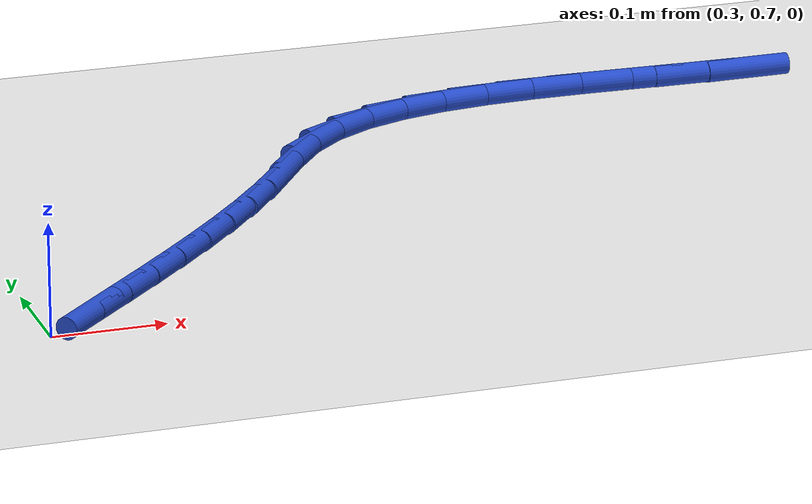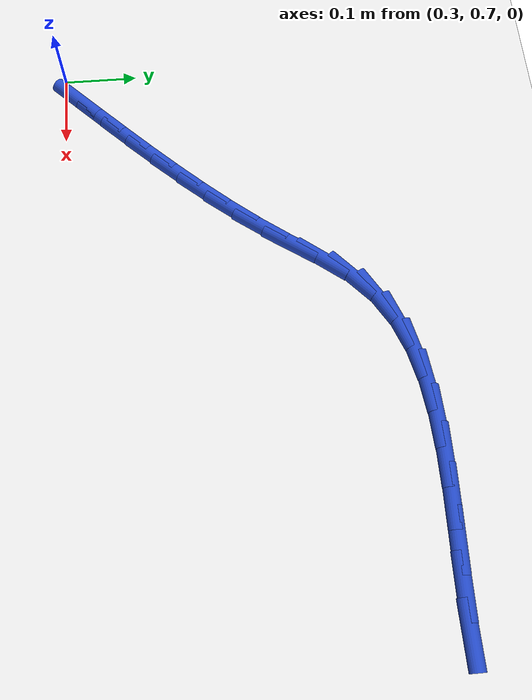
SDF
<sdf version="1.6">
 <world name="default">
  <model name="ground_plane">
   <static>1</static>
   <link name="link">
    <collision name="collision">
     <geometry><plane><normal>0 0 1</normal><size>100 100</size></plane></geometry>
     <surface><friction><ode><mu>100</mu><mu2>50</mu2></ode></friction></surface>
    </collision>
    <visual name="visual">
     <cast_shadows>0</cast_shadows>
     <geometry><plane><normal>0 0 1</normal><size>100 100</size></plane></geometry>
     <material>
      <script><uri>file://media/materials/scripts/gazebo.material</uri><name>Gazebo/WhiteGlow</name></script>
     </material>
    </visual>
   </link>
  </model>
  <model name="line">
   <link name="link_18">
    <pose>0.33898508375385816 0.7185943475452742 0.01 0 1.57 0.7871169174299859</pose>
    <collision name="collision">
     <geometry><cylinder><radius>0.01</radius><length>0.08</length></cylinder></geometry>
    </collision>
    <visual name="visual">
     <material>
      <script><name>Gazebo/Blue</name><uri>file://media/materials/scripts/gazebo.material</uri></script>
     </material>
     <geometry><cylinder><radius>0.01</radius><length>0.08</length></cylinder></geometry>
    </visual>
   </link>
   <link name="link_19">
    <pose>0.371839869109746 0.7515622660502582 0.01 0 1.57 0.7892598214826891</pose>
    <collision name="collision">
     <geometry><cylinder><radius>0.01</radius><length>0.08</length></cylinder></geometry>
    </collision>
    <visual name="visual">
     <material>
      <script><name>Gazebo/Blue</name><uri>file://media/materials/scripts/gazebo.material</uri></script>
     </material>
     <geometry><cylinder><radius>0.01</radius><length>0.08</length></cylinder></geometry>
    </visual>
   </link>
   <link name="link_20">
    <pose>0.40472184445990644 0.7846991850648967 0.01 0 1.57 0.7976900060110687</pose>
    <collision name="collision">
     <geometry><cylinder><radius>0.01</radius><length>0.08</length></cylinder></geometry>
    </collision>
    <visual name="visual">
     <material>
      <script><name>Gazebo/Blue</name><uri>file://media/materials/scripts/gazebo.material</uri></script>
     </material>
     <geometry><cylinder><radius>0.01</radius><length>0.08</length></cylinder></geometry>
    </visual>
   </link>
   <link name="link_21">
    <pose>0.43738291540452723 0.8181732192568792 0.01 0 1.57 0.8124001498819933</pose>
    <collision name="collision">
     <geometry><cylinder><radius>0.01</radius><length>0.08</length></cylinder></geometry>
    </collision>
    <visual name="visual">
     <material>
      <script><name>Gazebo/Blue</name><uri>file://media/materials/scripts/gazebo.material</uri></script>
     </material>
     <geometry><cylinder><radius>0.01</radius><length>0.08</length></cylinder></geometry>
    </visual>
   </link>
   <link name="link_22">
    <pose>0.46957498754379556 0.8521524832938956 0.01 0 1.57 0.8334142381803004</pose>
    <collision name="collision">
     <geometry><cylinder><radius>0.01</radius><length>0.08</length></cylinder></geometry>
    </collision>
    <visual name="visual">
     <material>
      <script><name>Gazebo/Blue</name><uri>file://media/materials/scripts/gazebo.material</uri></script>
     </material>
     <geometry><cylinder><radius>0.01</radius><length>0.08</length></cylinder></geometry>
    </visual>
   </link>
   <link name="link_23">
    <pose>0.501049966477899 0.8868050918436352 0.01 0 1.57 0.8607700351608513</pose>
    <collision name="collision">
     <geometry><cylinder><radius>0.01</radius><length>0.08</length></cylinder></geometry>
    </collision>
    <visual name="visual">
     <material>
      <script><name>Gazebo/Blue</name><uri>file://media/materials/scripts/gazebo.material</uri></script>
     </material>
     <geometry><cylinder><radius>0.01</radius><length>0.08</length></cylinder></geometry>
    </visual>
   </link>
   <link name="link_24">
    <pose>0.5315597578070248 0.9222991595737873 0.01 0 1.57 0.8944939121003007</pose>
    <collision name="collision">
     <geometry><cylinder><radius>0.01</radius><length>0.08</length></cylinder></geometry>
    </collision>
    <visual name="visual">
     <material>
      <script><name>Gazebo/Blue</name><uri>file://media/materials/scripts/gazebo.material</uri></script>
     </material>
     <geometry><cylinder><radius>0.01</radius><length>0.08</length></cylinder></geometry>
    </visual>
   </link>
   <link name="link_25">
    <pose>0.5608562671313603 0.9588028011520418 0.01 0 1.57 0.9345676568104154</pose>
    <collision name="collision">
     <geometry><cylinder><radius>0.01</radius><length>0.08</length></cylinder></geometry>
    </collision>
    <visual name="visual">
     <material>
      <script><name>Gazebo/Blue</name><uri>file://media/materials/scripts/gazebo.material</uri></script>
     </material>
     <geometry><cylinder><radius>0.01</radius><length>0.08</length></cylinder></geometry>
    </visual>
   </link>
   <link name="link_26">
    <pose>0.5886914000510932 0.9964841312460881 0.01 0 1.57 0.9696095132786198</pose>
    <collision name="collision">
     <geometry><cylinder><radius>0.01</radius><length>0.08</length></cylinder></geometry>
    </collision>
    <visual name="visual">
     <material>
      <script><name>Gazebo/Blue</name><uri>file://media/materials/scripts/gazebo.material</uri></script>
     </material>
     <geometry><cylinder><radius>0.01</radius><length>0.08</length></cylinder></geometry>
    </visual>
   </link>
   <link name="link_27">
    <pose>0.6151438319806736 1.035051244932331 0.01 0 1.57 0.9143416901555427</pose>
    <collision name="collision">
     <geometry><cylinder><radius>0.01</radius><length>0.08</length></cylinder></geometry>
    </collision>
    <visual name="visual">
     <material>
      <script><name>Gazebo/Blue</name><uri>file://media/materials/scripts/gazebo.material</uri></script>
     </material>
     <geometry><cylinder><radius>0.01</radius><length>0.08</length></cylinder></geometry>
    </visual>
   </link>
   <link name="link_28">
    <pose>0.6427016946631761 1.0708202559378177 0.01 0 1.57 0.7356528513895213</pose>
    <collision name="collision">
     <geometry><cylinder><radius>0.01</radius><length>0.08</length></cylinder></geometry>
    </collision>
    <visual name="visual">
     <material>
      <script><name>Gazebo/Blue</name><uri>file://media/materials/scripts/gazebo.material</uri></script>
     </material>
     <geometry><cylinder><radius>0.01</radius><length>0.08</length></cylinder></geometry>
    </visual>
   </link>
   <link name="link_29">
    <pose>0.674351823088988 1.0994683536129373 0.01 0 1.57 0.5345600253316662</pose>
    <collision name="collision">
     <geometry><cylinder><radius>0.01</radius><length>0.08</length></cylinder></geometry>
    </collision>
    <visual name="visual">
     <material>
      <script><name>Gazebo/Blue</name><uri>file://media/materials/scripts/gazebo.material</uri></script>
     </material>
     <geometry><cylinder><radius>0.01</radius><length>0.08</length></cylinder></geometry>
    </visual>
   </link>
   <link name="link_30">
    <pose>0.7103663091396146 1.1207910521013569 0.01 0 1.57 0.36004748275417076</pose>
    <collision name="collision">
     <geometry><cylinder><radius>0.01</radius><length>0.08</length></cylinder></geometry>
    </collision>
    <visual name="visual">
     <material>
      <script><name>Gazebo/Blue</name><uri>file://media/materials/scripts/gazebo.material</uri></script>
     </material>
     <geometry><cylinder><radius>0.01</radius><length>0.08</length></cylinder></geometry>
    </visual>
   </link>
   <link name="link_31">
    <pose>0.7502194118248704 1.135794034076906 0.01 0 1.57 0.22080248202689576</pose>
    <collision name="collision">
     <geometry><cylinder><radius>0.01</radius><length>0.08</length></cylinder></geometry>
    </collision>
    <visual name="visual">
     <material>
      <script><name>Gazebo/Blue</name><uri>file://media/materials/scripts/gazebo.material</uri></script>
     </material>
     <geometry><cylinder><radius>0.01</radius><length>0.08</length></cylinder></geometry>
    </visual>
   </link>
   <link name="link_32">
    <pose>0.7933852858542295 1.1454831404182155 0.01 0 1.57 0.1165690919261657</pose>
    <collision name="collision">
     <geometry><cylinder><radius>0.01</radius><length>0.08</length></cylinder></geometry>
    </collision>
    <visual name="visual">
     <material>
      <script><name>Gazebo/Blue</name><uri>file://media/materials/scripts/gazebo.material</uri></script>
     </material>
     <geometry><cylinder><radius>0.01</radius><length>0.08</length></cylinder></geometry>
    </visual>
   </link>
   <link name="link_33">
    <pose>0.839338085937166 1.1508642120039152 0.01 0 1.57 0.04309113463695883</pose>
    <collision name="collision">
     <geometry><cylinder><radius>0.01</radius><length>0.08</length></cylinder></geometry>
    </collision>
    <visual name="visual">
     <material>
      <script><name>Gazebo/Blue</name><uri>file://media/materials/scripts/gazebo.material</uri></script>
     </material>
     <geometry><cylinder><radius>0.01</radius><length>0.08</length></cylinder></geometry>
    </visual>
   </link>
   <link name="link_34">
    <pose>0.8875519667831544 1.1529430897126365 0.01 0 1.57 -0.004353909167232691</pose>
    <collision name="collision">
     <geometry><cylinder><radius>0.01</radius><length>0.08</length></cylinder></geometry>
    </collision>
    <visual name="visual">
     <material>
      <script><name>Gazebo/Blue</name><uri>file://media/materials/scripts/gazebo.material</uri></script>
     </material>
     <geometry><cylinder><radius>0.01</radius><length>0.08</length></cylinder></geometry>
    </visual>
   </link>
   <link name="link_35">
    <pose>0.9375010831016684 1.1527256144230085 0.01 0 1.57 -0.029468234839879513</pose>
    <collision name="collision">
     <geometry><cylinder><radius>0.01</radius><length>0.08</length></cylinder></geometry>
    </collision>
    <visual name="visual">
     <material>
      <script><name>Gazebo/Blue</name><uri>file://media/materials/scripts/gazebo.material</uri></script>
     </material>
     <geometry><cylinder><radius>0.01</radius><length>0.08</length></cylinder></geometry>
    </visual>
   </link>
   <link name="link_36">
    <pose>0.9886595896021826 1.1512176270136625 0.01 0 1.57 -0.03456546580114034</pose>
    <collision name="collision">
     <geometry><cylinder><radius>0.01</radius><length>0.08</length></cylinder></geometry>
    </collision>
    <visual name="visual">
     <material>
      <script><name>Gazebo/Blue</name><uri>file://media/materials/scripts/gazebo.material</uri></script>
     </material>
     <geometry><cylinder><radius>0.01</radius><length>0.08</length></cylinder></geometry>
    </visual>
   </link>
   <link name="link_37">
    <pose>1.040501640994171 1.1494249683632283 0.01 0 1.57 -0.020602741015383185</pose>
    <collision name="collision">
     <geometry><cylinder><radius>0.01</radius><length>0.08</length></cylinder></geometry>
    </collision>
    <visual name="visual">
     <material>
      <script><name>Gazebo/Blue</name><uri>file://media/materials/scripts/gazebo.material</uri></script>
     </material>
     <geometry><cylinder><radius>0.01</radius><length>0.08</length></cylinder></geometry>
    </visual>
   </link>
   <link name="link_38">
    <pose>1.0925013919871074 1.1483534793503365 0.01 0 1.57 0.009245893207210342</pose>
    <collision name="collision">
     <geometry><cylinder><radius>0.01</radius><length>0.08</length></cylinder></geometry>
    </collision>
    <visual name="visual">
     <material>
      <script><name>Gazebo/Blue</name><uri>file://media/materials/scripts/gazebo.material</uri></script>
     </material>
     <geometry><cylinder><radius>0.01</radius><length>0.08</length></cylinder></geometry>
    </visual>
   </link>
  </model>
 </world>
</sdf>
